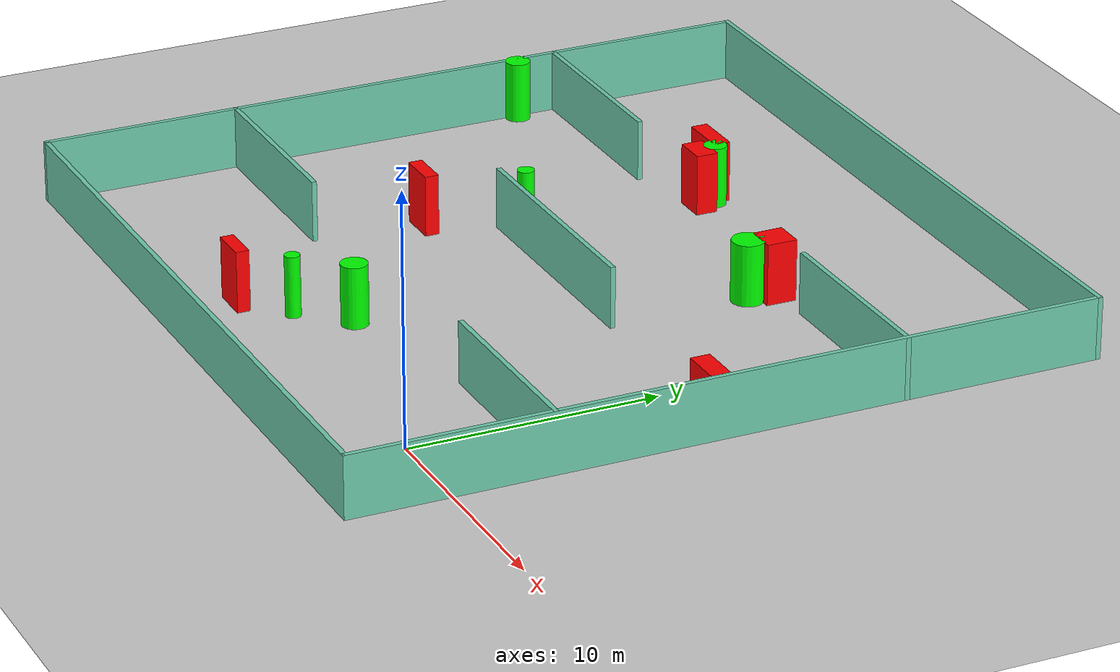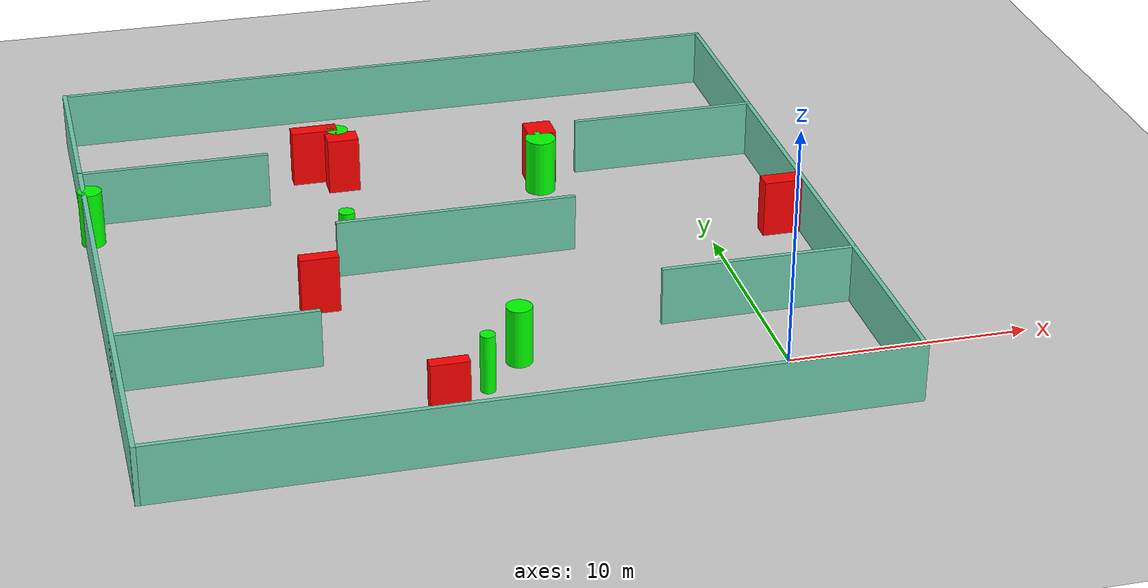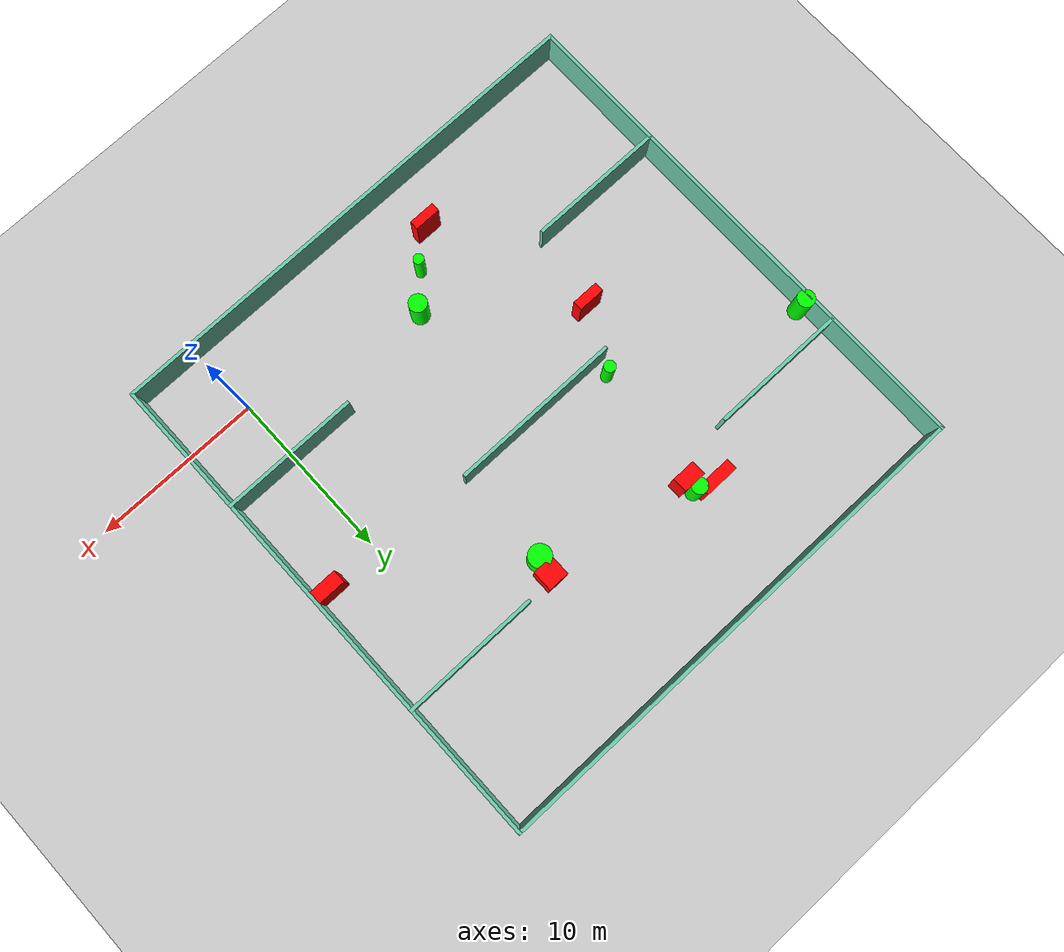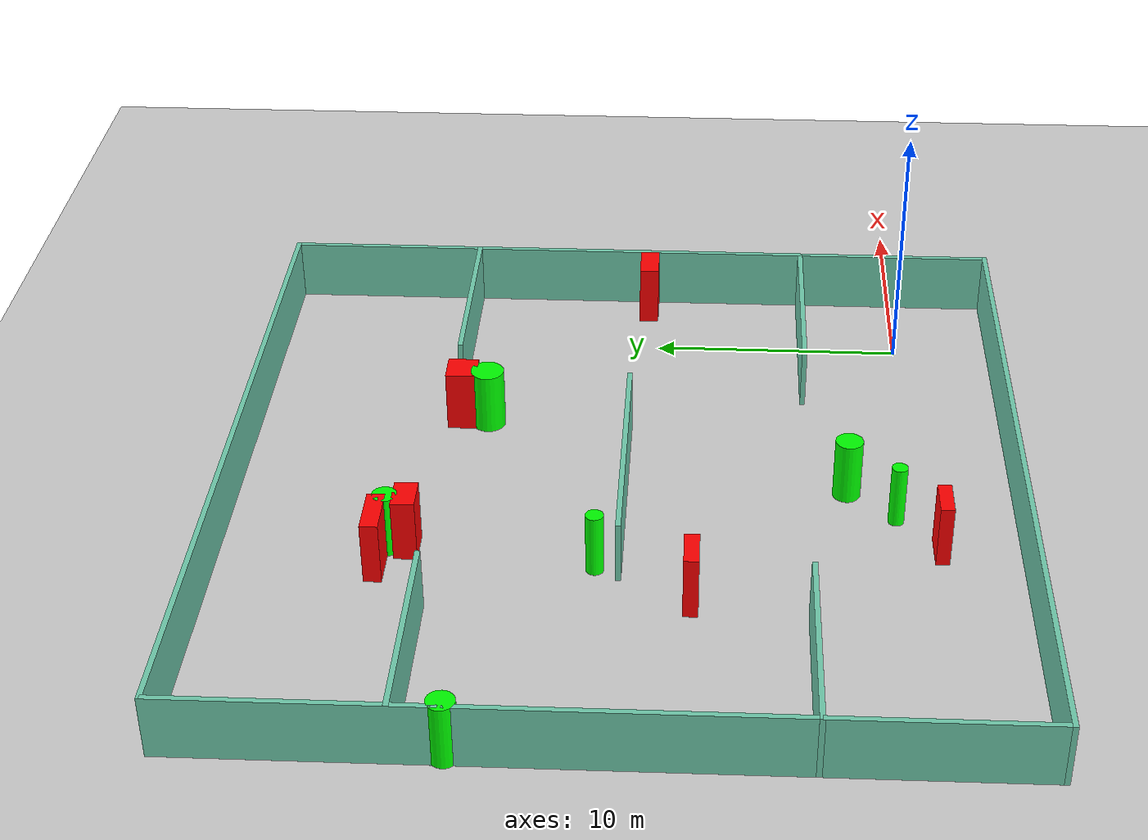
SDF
<sdf version="1.7">
 <world name="default">
  <light name="sun" type="directional">
   <pose>0 0 10 0 -0 0</pose>
   <diffuse>0.8 0.8 0.8 1</diffuse>
   <specular>0.2 0.2 0.2 1</specular>
   <attenuation>
    <range>1000</range>
    <constant>0.9</constant>
    <linear>0.01</linear>
    <quadratic>0.001</quadratic>
   </attenuation>
   <direction>-0.5 0.1 -0.9</direction>
   <spot><inner_angle>0</inner_angle><outer_angle>0</outer_angle><falloff>0</falloff></spot>
  </light>
  <model name="ground_plane">
   <static>1</static>
   <link name="link">
    <collision name="collision">
     <geometry><plane><normal>0 0 1</normal><size>100 100</size></plane></geometry>
     <surface>
      <contact><collide_bitmask>65535</collide_bitmask></contact>
      <friction><ode><mu>100</mu><mu2>50</mu2></ode></friction>
     </surface>
    </collision>
    <visual name="visual">
     <cast_shadows>0</cast_shadows>
     <geometry><plane><normal>0 0 1</normal><size>100 100</size></plane></geometry>
     <material>
      <script><uri>file://media/materials/scripts/gazebo.material</uri><name>Gazebo/Grey</name></script>
     </material>
    </visual>
   </link>
  </model>
  <gravity>0 0 -9.8</gravity>
  <magnetic_field>6e-06 2.3e-05 -4.2e-05</magnetic_field>
  <atmosphere type="adiabatic"/>
  <physics type="ode">
   <max_step_size>0.001</max_step_size>
   <real_time_factor>1</real_time_factor>
   <real_time_update_rate>1000</real_time_update_rate>
  </physics>
  <scene><ambient>0.4 0.4 0.4 1</ambient><background>0.7 0.7 0.7 1</background><shadows>1</shadows></scene>
  <spherical_coordinates>
   <surface_model>EARTH_WGS84</surface_model>
   <latitude_deg>0</latitude_deg>
   <longitude_deg>0</longitude_deg>
   <elevation>0</elevation>
   <heading_deg>0</heading_deg>
  </spherical_coordinates>
  <model name="my_base_walls">
   <link name="Wall_10">
    <collision name="Wall_10_Collision">
     <geometry><box><size>8.2 0.2 2.5</size></box></geometry>
     <pose>0 0 1.25 0 -0 0</pose>
    </collision>
    <visual name="Wall_10_Visual">
     <pose>0 0 1.25 0 -0 0</pose>
     <geometry><box><size>8.2 0.2 2.5</size></box></geometry>
     <material>
      <script><uri>file://media/materials/scripts/gazebo.material</uri><name>Gazebo/Grey</name></script>
      <ambient>0.435294 0.796078 0.67451 1</ambient>
     </material>
     <meta><layer>0</layer></meta>
    </visual>
    <pose>-11 -7 0 0 -0 0</pose>
   </link>
   <link name="Wall_12">
    <collision name="Wall_12_Collision">
     <geometry><box><size>8.2 0.2 2.5</size></box></geometry>
     <pose>0 0 1.25 0 -0 0</pose>
    </collision>
    <visual name="Wall_12_Visual">
     <pose>0 0 1.25 0 -0 0</pose>
     <geometry><box><size>8.2 0.2 2.5</size></box></geometry>
     <material>
      <script><uri>file://media/materials/scripts/gazebo.material</uri><name>Gazebo/Grey</name></script>
      <ambient>0.435294 0.796078 0.67451 1</ambient>
     </material>
     <meta><layer>0</layer></meta>
    </visual>
    <pose>-11 7 0 0 -0 0</pose>
   </link>
   <link name="Wall_14">
    <collision name="Wall_14_Collision">
     <geometry><box><size>8.2 0.2 2.5</size></box></geometry>
     <pose>0 0 1.25 0 -0 0</pose>
    </collision>
    <visual name="Wall_14_Visual">
     <pose>0 0 1.25 0 -0 0</pose>
     <geometry><box><size>8.2 0.2 2.5</size></box></geometry>
     <material>
      <script><uri>file://media/materials/scripts/gazebo.material</uri><name>Gazebo/Grey</name></script>
      <ambient>0.435294 0.796078 0.67451 1</ambient>
     </material>
     <meta><layer>0</layer></meta>
    </visual>
    <pose>11 7 0 0 -0 3.14159</pose>
   </link>
   <link name="Wall_16">
    <collision name="Wall_16_Collision">
     <geometry><box><size>10.2 0.2 2.5</size></box></geometry>
     <pose>0 0 1.25 0 -0 0</pose>
    </collision>
    <visual name="Wall_16_Visual">
     <pose>0 0 1.25 0 -0 0</pose>
     <geometry><box><size>10.2 0.2 2.5</size></box></geometry>
     <material>
      <script><uri>file://media/materials/scripts/gazebo.material</uri><name>Gazebo/Grey</name></script>
      <ambient>0.435294 0.796078 0.67451 1</ambient>
     </material>
     <meta><layer>0</layer></meta>
    </visual>
    <pose>0 0 0 0 -0 3.14159</pose>
   </link>
   <link name="Wall_2">
    <collision name="Wall_2_Collision">
     <geometry><box><size>30.2 0.2 2.5</size></box></geometry>
     <pose>0 0 1.25 0 -0 0</pose>
    </collision>
    <visual name="Wall_2_Visual">
     <pose>0 0 1.25 0 -0 0</pose>
     <geometry><box><size>30.2 0.2 2.5</size></box></geometry>
     <material>
      <script><uri>file://media/materials/scripts/gazebo.material</uri><name>Gazebo/Grey</name></script>
      <ambient>0.435294 0.796078 0.67451 1</ambient>
     </material>
     <meta><layer>0</layer></meta>
    </visual>
    <pose>0 -15 0 0 -0 3.14159</pose>
   </link>
   <link name="Wall_3">
    <collision name="Wall_3_Collision">
     <geometry><box><size>30.2 0.2 2.5</size></box></geometry>
     <pose>0 0 1.25 0 -0 0</pose>
    </collision>
    <visual name="Wall_3_Visual">
     <pose>0 0 1.25 0 -0 0</pose>
     <geometry><box><size>30.2 0.2 2.5</size></box></geometry>
     <material>
      <script><uri>file://media/materials/scripts/gazebo.material</uri><name>Gazebo/Grey</name></script>
      <ambient>0.435294 0.796078 0.67451 1</ambient>
     </material>
     <meta><layer>0</layer></meta>
    </visual>
    <pose>-15 0 0 0 -0 1.5708</pose>
   </link>
   <link name="Wall_4">
    <collision name="Wall_4_Collision">
     <geometry><box><size>30.2 0.2 2.5</size></box></geometry>
     <pose>0 0 1.25 0 -0 0</pose>
    </collision>
    <visual name="Wall_4_Visual">
     <pose>0 0 1.25 0 -0 0</pose>
     <geometry><box><size>30.2 0.2 2.5</size></box></geometry>
     <material>
      <script><uri>file://media/materials/scripts/gazebo.material</uri><name>Gazebo/Grey</name></script>
      <ambient>0.435294 0.796078 0.67451 1</ambient>
     </material>
     <meta><layer>0</layer></meta>
    </visual>
    <pose>0 15 0 0 -0 0</pose>
   </link>
   <link name="Wall_6">
    <collision name="Wall_6_Collision">
     <geometry><box><size>30.2 0.2 2.5</size></box></geometry>
     <pose>0 0 1.25 0 -0 0</pose>
    </collision>
    <visual name="Wall_6_Visual">
     <pose>0 0 1.25 0 -0 0</pose>
     <geometry><box><size>30.2 0.2 2.5</size></box></geometry>
     <material>
      <script><uri>file://media/materials/scripts/gazebo.material</uri><name>Gazebo/Grey</name></script>
      <ambient>0.435294 0.796078 0.67451 1</ambient>
     </material>
     <meta><layer>0</layer></meta>
    </visual>
    <pose>15 0 0 0 -0 1.5708</pose>
   </link>
   <link name="Wall_8">
    <collision name="Wall_8_Collision">
     <geometry><box><size>8.2 0.2 2.5</size></box></geometry>
     <pose>0 0 1.25 0 -0 0</pose>
    </collision>
    <visual name="Wall_8_Visual">
     <pose>0 0 1.25 0 -0 0</pose>
     <geometry><box><size>8.2 0.2 2.5</size></box></geometry>
     <material>
      <script><uri>file://media/materials/scripts/gazebo.material</uri><name>Gazebo/Grey</name></script>
      <ambient>0.435294 0.796078 0.67451 1</ambient>
     </material>
     <meta><layer>0</layer></meta>
    </visual>
    <pose>11 -7 0 0 -0 3.14159</pose>
   </link>
   <static>1</static>
   <pose>-11 11 0 0 -0 0</pose>
  </model>
  <model name="cylinder1">
   <static>1</static>
   <link name="link">
    <inertial>
     <mass>1</mass>
     <inertia><ixx>0.5</ixx><ixy>0</ixy><ixz>0</ixz><iyy>0.5</iyy><iyz>0</iyz><izz>1</izz></inertia>
    </inertial>
    <collision name="collision">
     <geometry><cylinder><radius>0.5363998121256245</radius><length>2.5</length></cylinder></geometry>
    </collision>
    <visual name="visual">
     <geometry><cylinder><radius>0.5363998121256245</radius><length>2.5</length></cylinder></geometry>
     <material>
      <ambient>0 1 0 1</ambient>
      <diffuse>0 1 0 1</diffuse>
      <specular>0.1 0.1 0.1 1</specular>
      <emissive>0 0 0 0</emissive>
     </material>
    </visual>
   </link>
   <pose>-10.343919850255919 2.45611275610481 1.25 0 0 0</pose>
  </model>
  <model name="cylinder2">
   <static>1</static>
   <link name="link">
    <inertial>
     <mass>1</mass>
     <inertia><ixx>0.5</ixx><ixy>0</ixy><ixz>0</ixz><iyy>0.5</iyy><iyz>0</iyz><izz>1</izz></inertia>
    </inertial>
    <collision name="collision">
     <geometry><cylinder><radius>0.6636690764779842</radius><length>2.5</length></cylinder></geometry>
    </collision>
    <visual name="visual">
     <geometry><cylinder><radius>0.6636690764779842</radius><length>2.5</length></cylinder></geometry>
     <material>
      <ambient>0 1 0 1</ambient>
      <diffuse>0 1 0 1</diffuse>
      <specular>0.1 0.1 0.1 1</specular>
      <emissive>0 0 0 0</emissive>
     </material>
    </visual>
   </link>
   <pose>-5.993607356742835 16.700980964981103 1.25 0 0 0</pose>
  </model>
  <model name="cylinder3">
   <static>1</static>
   <link name="link">
    <inertial>
     <mass>1</mass>
     <inertia><ixx>0.5</ixx><ixy>0</ixy><ixz>0</ixz><iyy>0.5</iyy><iyz>0</iyz><izz>1</izz></inertia>
    </inertial>
    <collision name="collision">
     <geometry><cylinder><radius>0.508878710736016</radius><length>2.5</length></cylinder></geometry>
    </collision>
    <visual name="visual">
     <geometry><cylinder><radius>0.508878710736016</radius><length>2.5</length></cylinder></geometry>
     <material>
      <ambient>0 1 0 1</ambient>
      <diffuse>0 1 0 1</diffuse>
      <specular>0.1 0.1 0.1 1</specular>
      <emissive>0 0 0 0</emissive>
     </material>
    </visual>
   </link>
   <pose>-25.74235039378628 16.269216936651762 1.25 0 0 0</pose>
  </model>
  <model name="cylinder4">
   <static>1</static>
   <link name="link">
    <inertial>
     <mass>1</mass>
     <inertia><ixx>0.5</ixx><ixy>0</ixy><ixz>0</ixz><iyy>0.5</iyy><iyz>0</iyz><izz>1</izz></inertia>
    </inertial>
    <collision name="collision">
     <geometry><cylinder><radius>0.34031475446661025</radius><length>2.5</length></cylinder></geometry>
    </collision>
    <visual name="visual">
     <geometry><cylinder><radius>0.34031475446661025</radius><length>2.5</length></cylinder></geometry>
     <material>
      <ambient>0 1 0 1</ambient>
      <diffuse>0 1 0 1</diffuse>
      <specular>0.1 0.1 0.1 1</specular>
      <emissive>0 0 0 0</emissive>
     </material>
    </visual>
   </link>
   <pose>-15.497177015341778 11.881497416781322 1.25 0 0 0</pose>
  </model>
  <model name="cylinder5">
   <static>1</static>
   <link name="link">
    <inertial>
     <mass>1</mass>
     <inertia><ixx>0.5</ixx><ixy>0</ixy><ixz>0</ixz><iyy>0.5</iyy><iyz>0</iyz><izz>1</izz></inertia>
    </inertial>
    <collision name="collision">
     <geometry><cylinder><radius>0.4696917525099085</radius><length>2.5</length></cylinder></geometry>
    </collision>
    <visual name="visual">
     <geometry><cylinder><radius>0.4696917525099085</radius><length>2.5</length></cylinder></geometry>
     <material>
      <ambient>0 1 0 1</ambient>
      <diffuse>0 1 0 1</diffuse>
      <specular>0.1 0.1 0.1 1</specular>
      <emissive>0 0 0 0</emissive>
     </material>
    </visual>
   </link>
   <pose>-14.553538448733834 19.644832870262608 1.25 0 0 0</pose>
  </model>
  <model name="cylinder6">
   <static>1</static>
   <link name="link">
    <inertial>
     <mass>1</mass>
     <inertia><ixx>0.5</ixx><ixy>0</ixy><ixz>0</ixz><iyy>0.5</iyy><iyz>0</iyz><izz>1</izz></inertia>
    </inertial>
    <collision name="collision">
     <geometry><cylinder><radius>0.30733394075247195</radius><length>2.5</length></cylinder></geometry>
    </collision>
    <visual name="visual">
     <geometry><cylinder><radius>0.30733394075247195</radius><length>2.5</length></cylinder></geometry>
     <material>
      <ambient>0 1 0 1</ambient>
      <diffuse>0 1 0 1</diffuse>
      <specular>0.1 0.1 0.1 1</specular>
      <emissive>0 0 0 0</emissive>
     </material>
    </visual>
   </link>
   <pose>-12.010742825634633 0.6503511990973219 1.25 0 0 0</pose>
  </model>
  <model name="box1">
   <static>1</static>
   <link name="link">
    <inertial>
     <mass>1</mass>
     <inertia><ixx>0.083</ixx><ixy>0</ixy><ixz>0</ixz><iyy>0.083</iyy><iyz>0</iyz><izz>0.083</izz></inertia>
    </inertial>
    <collision name="collision">
     <geometry><box><size>1.3782286520539793 0.8887506956473049 2.5</size></box></geometry>
    </collision>
    <visual name="visual">
     <geometry><box><size>1.3782286520539793 0.8887506956473049 2.5</size></box></geometry>
     <material>
      <ambient>1 0 0 1</ambient>
      <diffuse>1 0 0 1</diffuse>
      <specular>0.1 0.1 0.1 1</specular>
      <emissive>0 0 0 0</emissive>
     </material>
    </visual>
    <sensor name="my_contact" type="contact">
     <contact><collision>box_collision</collision><topic>__default_topic__</topic></contact>
    </sensor>
   </link>
   <pose>-14.481888820116257 18.92294271366808 1.25 0 0 0</pose>
  </model>
  <model name="box2">
   <static>1</static>
   <link name="link">
    <inertial>
     <mass>1</mass>
     <inertia><ixx>0.083</ixx><ixy>0</ixy><ixz>0</ixz><iyy>0.083</iyy><iyz>0</iyz><izz>0.083</izz></inertia>
    </inertial>
    <collision name="collision">
     <geometry><box><size>1.2583624132025135 1.222498223836269 2.5</size></box></geometry>
    </collision>
    <visual name="visual">
     <geometry><box><size>1.2583624132025135 1.222498223836269 2.5</size></box></geometry>
     <material>
      <ambient>1 0 0 1</ambient>
      <diffuse>1 0 0 1</diffuse>
      <specular>0.1 0.1 0.1 1</specular>
      <emissive>0 0 0 0</emissive>
     </material>
    </visual>
    <sensor name="my_contact" type="contact">
     <contact><collision>box_collision</collision><topic>__default_topic__</topic></contact>
    </sensor>
   </link>
   <pose>-5.813930541686339 17.724575498965105 1.25 0 0 0</pose>
  </model>
  <model name="box3">
   <static>1</static>
   <link name="link">
    <inertial>
     <mass>1</mass>
     <inertia><ixx>0.083</ixx><ixy>0</ixy><ixz>0</ixz><iyy>0.083</iyy><iyz>0</iyz><izz>0.083</izz></inertia>
    </inertial>
    <collision name="collision">
     <geometry><box><size>1.6485013349937845 0.7839825329070642 2.5</size></box></geometry>
    </collision>
    <visual name="visual">
     <geometry><box><size>1.6485013349937845 0.7839825329070642 2.5</size></box></geometry>
     <material>
      <ambient>1 0 0 1</ambient>
      <diffuse>1 0 0 1</diffuse>
      <specular>0.1 0.1 0.1 1</specular>
      <emissive>0 0 0 0</emissive>
     </material>
    </visual>
    <sensor name="my_contact" type="contact">
     <contact><collision>box_collision</collision><topic>__default_topic__</topic></contact>
    </sensor>
   </link>
   <pose>3.072898316314955 10.513744994025988 1.25 0 0 0</pose>
  </model>
  <model name="box4">
   <static>1</static>
   <link name="link">
    <inertial>
     <mass>1</mass>
     <inertia><ixx>0.083</ixx><ixy>0</ixy><ixz>0</ixz><iyy>0.083</iyy><iyz>0</iyz><izz>0.083</izz></inertia>
    </inertial>
    <collision name="collision">
     <geometry><box><size>2.0244151840756217 0.6749567705086527 2.5</size></box></geometry>
    </collision>
    <visual name="visual">
     <geometry><box><size>2.0244151840756217 0.6749567705086527 2.5</size></box></geometry>
     <material>
      <ambient>1 0 0 1</ambient>
      <diffuse>1 0 0 1</diffuse>
      <specular>0.1 0.1 0.1 1</specular>
      <emissive>0 0 0 0</emissive>
     </material>
    </visual>
    <sensor name="my_contact" type="contact">
     <contact><collision>box_collision</collision><topic>__default_topic__</topic></contact>
    </sensor>
   </link>
   <pose>-15.564855261771406 19.949463749075 1.25 0 0 0</pose>
  </model>
  <model name="box5">
   <static>1</static>
   <link name="link">
    <inertial>
     <mass>1</mass>
     <inertia><ixx>0.083</ixx><ixy>0</ixy><ixz>0</ixz><iyy>0.083</iyy><iyz>0</iyz><izz>0.083</izz></inertia>
    </inertial>
    <collision name="collision">
     <geometry><box><size>1.609528223869636 0.562271430028558 2.5</size></box></geometry>
    </collision>
    <visual name="visual">
     <geometry><box><size>1.609528223869636 0.562271430028558 2.5</size></box></geometry>
     <material>
      <ambient>1 0 0 1</ambient>
      <diffuse>1 0 0 1</diffuse>
      <specular>0.1 0.1 0.1 1</specular>
      <emissive>0 0 0 0</emissive>
     </material>
    </visual>
    <sensor name="my_contact" type="contact">
     <contact><collision>box_collision</collision><topic>__default_topic__</topic></contact>
    </sensor>
   </link>
   <pose>-17.2823968642631 8.329274003742178 1.25 0 0 0</pose>
  </model>
  <model name="box6">
   <static>1</static>
   <link name="link">
    <inertial>
     <mass>1</mass>
     <inertia><ixx>0.083</ixx><ixy>0</ixy><ixz>0</ixz><iyy>0.083</iyy><iyz>0</iyz><izz>0.083</izz></inertia>
    </inertial>
    <collision name="collision">
     <geometry><box><size>1.5707958820199563 0.5275220625412322 2.5</size></box></geometry>
    </collision>
    <visual name="visual">
     <geometry><box><size>1.5707958820199563 0.5275220625412322 2.5</size></box></geometry>
     <material>
      <ambient>1 0 0 1</ambient>
      <diffuse>1 0 0 1</diffuse>
      <specular>0.1 0.1 0.1 1</specular>
      <emissive>0 0 0 0</emissive>
     </material>
    </visual>
    <sensor name="my_contact" type="contact">
     <contact><collision>box_collision</collision><topic>__default_topic__</topic></contact>
    </sensor>
   </link>
   <pose>-13.85359293306039 -0.9143426919376818 1.25 0 0 0</pose>
  </model>
 </world>
</sdf>
